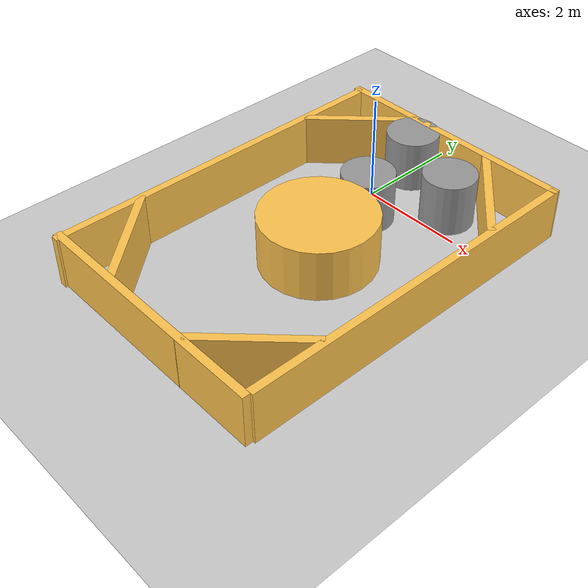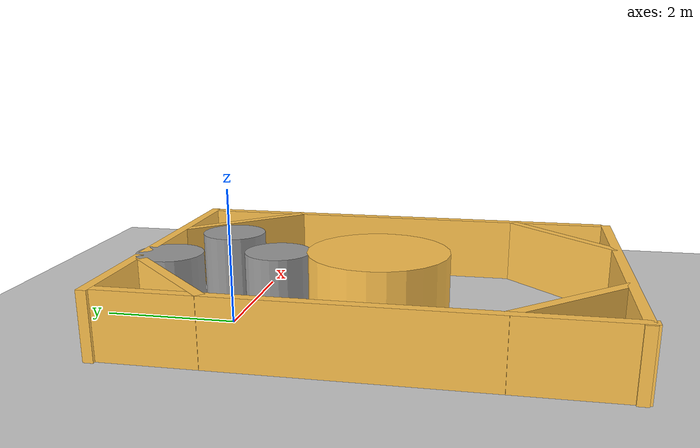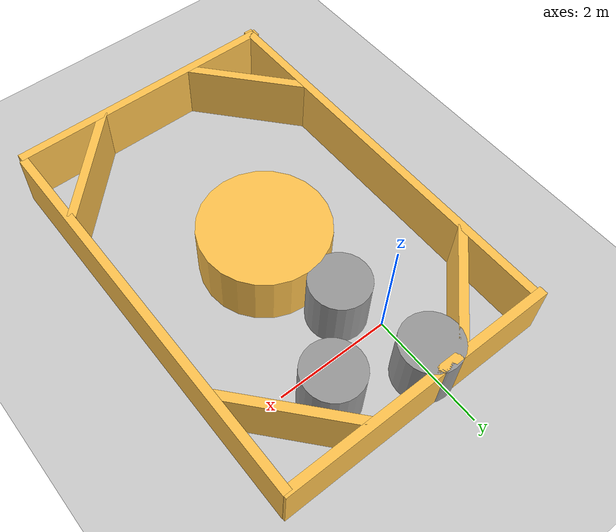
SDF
<sdf version="1.4">
 <world name="default">
  <light name="sun" type="directional">
   <pose>0 0 10 0 -0 0</pose>
   <diffuse>0.8 0.8 0.8 1</diffuse>
   <specular>0.2 0.2 0.2 1</specular>
   <attenuation>
    <range>1000</range>
    <constant>0.9</constant>
    <linear>0.01</linear>
    <quadratic>0.001</quadratic>
   </attenuation>
   <direction>-0.5 0.1 -0.9</direction>
  </light>
  <model name="ground_plane">
   <static>1</static>
   <link name="link">
    <collision name="collision">
     <geometry><plane><normal>0 0 1</normal><size>100 100</size></plane></geometry>
     <surface><friction><ode><mu>100</mu><mu2>50</mu2></ode></friction></surface>
    </collision>
    <visual name="visual">
     <cast_shadows>0</cast_shadows>
     <geometry><plane><normal>0 0 1</normal><size>100 100</size></plane></geometry>
     <material>
      <script><uri>file://media/materials/scripts/gazebo.material</uri><name>Gazebo/Grey</name></script>
     </material>
    </visual>
    <velocity_decay><linear>0</linear><angular>0</angular></velocity_decay>
   </link>
  </model>
  <model name="Round_ql_1">
   <link name="Wall_10">
    <pose>0.547294 2.925 0 0 -0 3.14159</pose>
    <inertial>
     <inertia><ixx>nan</ixx><ixy>0</ixy><ixz>0</ixz><iyy>nan</iyy><iyz>0</iyz><izz>nan</izz></inertia>
     <mass>0</mass>
    </inertial>
    <visual name="Wall_10_Visual">
     <pose>0 0 0.5 0 -0 0</pose>
     <geometry><box><size>4.88631 0.15 1</size></box></geometry>
     <material>
      <script><uri>file://media/materials/scripts/gazebo.material</uri><name>Gazebo/Grey</name></script>
      <ambient>1 0.764706 0.305882 1</ambient>
      <shader type="pixel"/>
      <diffuse>0.7 0.7 0.7 1</diffuse>
      <specular>0.01 0.01 0.01 1</specular>
      <emissive>0 0 0 1</emissive>
     </material>
    </visual>
    <collision name="Wall_10_Collision">
     <pose>0 0 0.5 0 -0 0</pose>
     <geometry><box><size>4.88631 0.15 1</size></box></geometry>
     <surface>
      <friction><ode><mu>1</mu><mu2>1</mu2><fdir1>0 0 0</fdir1><slip1>0</slip1><slip2>0</slip2></ode></friction>
      <bounce><restitution_coefficient>0</restitution_coefficient><threshold>1e+06</threshold></bounce>
      <contact>
       <collide_without_contact>0</collide_without_contact>
       <ode>
        <soft_cfm>0</soft_cfm>
        <soft_erp>0.2</soft_erp>
        <kp>1e+13</kp>
        <kd>1</kd>
        <max_vel>0.01</max_vel>
        <min_depth>0</min_depth>
       </ode>
       <bullet>
        <split_impulse>1</split_impulse>
        <split_impulse_penetration_threshold>-0.01</split_impulse_penetration_threshold>
        <soft_cfm>0</soft_cfm>
        <soft_erp>0.2</soft_erp>
        <kp>1e+13</kp>
        <kd>1</kd>
       </bullet>
      </contact>
     </surface>
    </collision>
    <velocity_decay><linear>0</linear><angular>0</angular></velocity_decay>
   </link>
   <link name="Wall_11">
    <pose>-1.7714 -0.578235 0 0 0 -1.5708</pose>
    <inertial>
     <inertia><ixx>nan</ixx><ixy>0</ixy><ixz>0</ixz><iyy>nan</iyy><iyz>0</iyz><izz>nan</izz></inertia>
     <mass>0</mass>
    </inertial>
    <visual name="Wall_11_Visual">
     <pose>0 0 0.5 0 -0 0</pose>
     <geometry><box><size>7.04488 0.15 1</size></box></geometry>
     <material>
      <script><uri>file://media/materials/scripts/gazebo.material</uri><name>Gazebo/Grey</name></script>
      <ambient>1 0.764706 0.305882 1</ambient>
      <shader type="pixel"/>
      <diffuse>0.7 0.7 0.7 1</diffuse>
      <specular>0.01 0.01 0.01 1</specular>
      <emissive>0 0 0 1</emissive>
     </material>
    </visual>
    <collision name="Wall_11_Collision">
     <pose>0 0 0.5 0 -0 0</pose>
     <geometry><box><size>7.04488 0.15 1</size></box></geometry>
     <surface>
      <friction><ode><mu>1</mu><mu2>1</mu2><fdir1>0 0 0</fdir1><slip1>0</slip1><slip2>0</slip2></ode></friction>
      <bounce><restitution_coefficient>0</restitution_coefficient><threshold>1e+06</threshold></bounce>
      <contact>
       <collide_without_contact>0</collide_without_contact>
       <collide_without_contact_bitmask>1</collide_without_contact_bitmask>
       <ode>
        <soft_cfm>0</soft_cfm>
        <soft_erp>0.2</soft_erp>
        <kp>1e+13</kp>
        <kd>1</kd>
        <max_vel>0.01</max_vel>
        <min_depth>0</min_depth>
       </ode>
       <bullet>
        <split_impulse>1</split_impulse>
        <split_impulse_penetration_threshold>-0.01</split_impulse_penetration_threshold>
        <soft_cfm>0</soft_cfm>
        <soft_erp>0.2</soft_erp>
        <kp>1e+13</kp>
        <kd>1</kd>
       </bullet>
      </contact>
     </surface>
    </collision>
    <velocity_decay><linear>0</linear><angular>0</angular></velocity_decay>
   </link>
   <link name="Wall_6">
    <pose>0.535859 -3.98664 0 0 -0 0</pose>
    <inertial>
     <inertia><ixx>nan</ixx><ixy>0</ixy><ixz>0</ixz><iyy>nan</iyy><iyz>0</iyz><izz>nan</izz></inertia>
     <mass>0</mass>
    </inertial>
    <visual name="Wall_6_Visual">
     <pose>0 0 0.5 0 -0 0</pose>
     <geometry><box><size>4.83392 0.15 1</size></box></geometry>
     <material>
      <script><uri>file://media/materials/scripts/gazebo.material</uri><name>Gazebo/Grey</name></script>
      <ambient>1 0.764706 0.305882 1</ambient>
      <shader type="pixel"/>
      <diffuse>0.7 0.7 0.7 1</diffuse>
      <specular>0.01 0.01 0.01 1</specular>
      <emissive>0 0 0 1</emissive>
     </material>
    </visual>
    <collision name="Wall_6_Collision">
     <pose>0 0 0.5 0 -0 0</pose>
     <geometry><box><size>4.83392 0.15 1</size></box></geometry>
     <surface>
      <friction><ode><mu>1</mu><mu2>1</mu2><fdir1>0 0 0</fdir1><slip1>0</slip1><slip2>0</slip2></ode></friction>
      <bounce><restitution_coefficient>0</restitution_coefficient><threshold>1e+06</threshold></bounce>
      <contact>
       <collide_without_contact>0</collide_without_contact>
       <collide_without_contact_bitmask>1</collide_without_contact_bitmask>
       <ode>
        <soft_cfm>0</soft_cfm>
        <soft_erp>0.2</soft_erp>
        <kp>1e+13</kp>
        <kd>1</kd>
        <max_vel>0.01</max_vel>
        <min_depth>0</min_depth>
       </ode>
       <bullet>
        <split_impulse>1</split_impulse>
        <split_impulse_penetration_threshold>-0.01</split_impulse_penetration_threshold>
        <soft_cfm>0</soft_cfm>
        <soft_erp>0.2</soft_erp>
        <kp>1e+13</kp>
        <kd>1</kd>
       </bullet>
      </contact>
     </surface>
    </collision>
    <velocity_decay><linear>0</linear><angular>0</angular></velocity_decay>
   </link>
   <link name="Wall_6_clone">
    <pose>-1.06662 -3.1882 0 0 0 -0.841822</pose>
    <inertial>
     <inertia><ixx>nan</ixx><ixy>0</ixy><ixz>0</ixz><iyy>nan</iyy><iyz>0</iyz><izz>nan</izz></inertia>
     <mass>0</mass>
    </inertial>
    <visual name="Wall_6_Visual">
     <pose>0 0 0.5 0 -0 0</pose>
     <geometry><box><size>2.17827 0.15 1</size></box></geometry>
     <material>
      <script><uri>file://media/materials/scripts/gazebo.material</uri><name>Gazebo/Grey</name></script>
      <ambient>1 0.764706 0.305882 1</ambient>
      <shader type="pixel"/>
      <diffuse>0.7 0.7 0.7 1</diffuse>
      <specular>0.01 0.01 0.01 1</specular>
      <emissive>0 0 0 1</emissive>
     </material>
    </visual>
    <collision name="Wall_6_Collision">
     <pose>0 0 0.5 0 -0 0</pose>
     <geometry><box><size>2.17827 0.15 1</size></box></geometry>
     <surface>
      <friction><ode><mu>1</mu><mu2>1</mu2><fdir1>0 0 0</fdir1><slip1>0</slip1><slip2>0</slip2></ode></friction>
      <bounce><restitution_coefficient>0</restitution_coefficient><threshold>1e+06</threshold></bounce>
      <contact>
       <collide_without_contact>0</collide_without_contact>
       <collide_without_contact_bitmask>1</collide_without_contact_bitmask>
       <ode>
        <soft_cfm>0</soft_cfm>
        <soft_erp>0.2</soft_erp>
        <kp>1e+13</kp>
        <kd>1</kd>
        <max_vel>0.01</max_vel>
        <min_depth>0</min_depth>
       </ode>
       <bullet>
        <split_impulse>1</split_impulse>
        <split_impulse_penetration_threshold>-0.01</split_impulse_penetration_threshold>
        <soft_cfm>0</soft_cfm>
        <soft_erp>0.2</soft_erp>
        <kp>1e+13</kp>
        <kd>1</kd>
       </bullet>
      </contact>
     </surface>
    </collision>
    <velocity_decay><linear>0</linear><angular>0</angular></velocity_decay>
   </link>
   <link name="Wall_6_clone_clone">
    <pose>2.16841 2.08689 0 0 0 -0.841822</pose>
    <inertial>
     <inertia><ixx>nan</ixx><ixy>0</ixy><ixz>0</ixz><iyy>nan</iyy><iyz>0</iyz><izz>nan</izz></inertia>
     <mass>0</mass>
    </inertial>
    <visual name="Wall_6_Visual">
     <pose>0 0 0.5 0 -0 0</pose>
     <geometry><box><size>2.17827 0.15 1</size></box></geometry>
     <material>
      <script><uri>file://media/materials/scripts/gazebo.material</uri><name>Gazebo/Grey</name></script>
      <ambient>1 0.764706 0.305882 1</ambient>
      <shader type="pixel"/>
      <diffuse>0.7 0.7 0.7 1</diffuse>
      <specular>0.01 0.01 0.01 1</specular>
      <emissive>0 0 0 1</emissive>
     </material>
    </visual>
    <collision name="Wall_6_Collision">
     <pose>0 0 0.5 0 -0 0</pose>
     <geometry><box><size>2.17827 0.15 1</size></box></geometry>
     <surface>
      <friction><ode><mu>1</mu><mu2>1</mu2><fdir1>0 0 0</fdir1><slip1>0</slip1><slip2>0</slip2></ode></friction>
      <bounce><restitution_coefficient>0</restitution_coefficient><threshold>1e+06</threshold></bounce>
      <contact>
       <collide_without_contact>0</collide_without_contact>
       <collide_without_contact_bitmask>1</collide_without_contact_bitmask>
       <ode>
        <soft_cfm>0</soft_cfm>
        <soft_erp>0.2</soft_erp>
        <kp>1e+13</kp>
        <kd>1</kd>
        <max_vel>0.01</max_vel>
        <min_depth>0</min_depth>
       </ode>
       <bullet>
        <split_impulse>1</split_impulse>
        <split_impulse_penetration_threshold>-0.01</split_impulse_penetration_threshold>
        <soft_cfm>0</soft_cfm>
        <soft_erp>0.2</soft_erp>
        <kp>1e+13</kp>
        <kd>1</kd>
       </bullet>
      </contact>
     </surface>
    </collision>
    <velocity_decay><linear>0</linear><angular>0</angular></velocity_decay>
   </link>
   <link name="Wall_6_clone_clone_0">
    <pose>-1.02986 2.14447 0 0 0 -2.34987</pose>
    <inertial>
     <inertia><ixx>nan</ixx><ixy>0</ixy><ixz>0</ixz><iyy>nan</iyy><iyz>0</iyz><izz>nan</izz></inertia>
     <mass>0</mass>
    </inertial>
    <visual name="Wall_6_Visual">
     <pose>0 0 0.5 0 -0 0</pose>
     <geometry><box><size>2.17827 0.15 1</size></box></geometry>
     <material>
      <script><uri>file://media/materials/scripts/gazebo.material</uri><name>Gazebo/Grey</name></script>
      <ambient>1 0.764706 0.305882 1</ambient>
      <shader type="pixel"/>
      <diffuse>0.7 0.7 0.7 1</diffuse>
      <specular>0.01 0.01 0.01 1</specular>
      <emissive>0 0 0 1</emissive>
     </material>
    </visual>
    <collision name="Wall_6_Collision">
     <pose>0 0 0.5 0 -0 0</pose>
     <geometry><box><size>2.17827 0.15 1</size></box></geometry>
     <surface>
      <friction><ode><mu>1</mu><mu2>1</mu2><fdir1>0 0 0</fdir1><slip1>0</slip1><slip2>0</slip2></ode></friction>
      <bounce><restitution_coefficient>0</restitution_coefficient><threshold>1e+06</threshold></bounce>
      <contact>
       <collide_without_contact>0</collide_without_contact>
       <collide_without_contact_bitmask>1</collide_without_contact_bitmask>
       <ode>
        <soft_cfm>0</soft_cfm>
        <soft_erp>0.2</soft_erp>
        <kp>1e+13</kp>
        <kd>1</kd>
        <max_vel>0.01</max_vel>
        <min_depth>0</min_depth>
       </ode>
       <bullet>
        <split_impulse>1</split_impulse>
        <split_impulse_penetration_threshold>-0.01</split_impulse_penetration_threshold>
        <soft_cfm>0</soft_cfm>
        <soft_erp>0.2</soft_erp>
        <kp>1e+13</kp>
        <kd>1</kd>
       </bullet>
      </contact>
     </surface>
    </collision>
    <velocity_decay><linear>0</linear><angular>0</angular></velocity_decay>
   </link>
   <link name="Wall_6_clone_clone_0_clone">
    <pose>2.12426 -3.23876 0 0 0 -2.34987</pose>
    <inertial>
     <inertia><ixx>nan</ixx><ixy>0</ixy><ixz>0</ixz><iyy>nan</iyy><iyz>0</iyz><izz>nan</izz></inertia>
     <mass>0</mass>
    </inertial>
    <visual name="Wall_6_Visual">
     <pose>0 0 0.5 0 -0 0</pose>
     <geometry><box><size>2.17827 0.15 1</size></box></geometry>
     <material>
      <script><uri>file://media/materials/scripts/gazebo.material</uri><name>Gazebo/Grey</name></script>
      <ambient>1 0.764706 0.305882 1</ambient>
      <shader type="pixel"/>
      <diffuse>0.7 0.7 0.7 1</diffuse>
      <specular>0.01 0.01 0.01 1</specular>
      <emissive>0 0 0 1</emissive>
     </material>
    </visual>
    <collision name="Wall_6_Collision">
     <pose>0 0 0.5 0 -0 0</pose>
     <geometry><box><size>2.17827 0.15 1</size></box></geometry>
     <surface>
      <friction><ode><mu>1</mu><mu2>1</mu2><fdir1>0 0 0</fdir1><slip1>0</slip1><slip2>0</slip2></ode></friction>
      <bounce><restitution_coefficient>0</restitution_coefficient><threshold>1e+06</threshold></bounce>
      <contact>
       <collide_without_contact>0</collide_without_contact>
       <collide_without_contact_bitmask>1</collide_without_contact_bitmask>
       <ode>
        <soft_cfm>0</soft_cfm>
        <soft_erp>0.2</soft_erp>
        <kp>1e+13</kp>
        <kd>1</kd>
        <max_vel>0.01</max_vel>
        <min_depth>0</min_depth>
       </ode>
       <bullet>
        <split_impulse>1</split_impulse>
        <split_impulse_penetration_threshold>-0.01</split_impulse_penetration_threshold>
        <soft_cfm>0</soft_cfm>
        <soft_erp>0.2</soft_erp>
        <kp>1e+13</kp>
        <kd>1</kd>
       </bullet>
      </contact>
     </surface>
    </collision>
    <velocity_decay><linear>0</linear><angular>0</angular></velocity_decay>
   </link>
   <link name="Wall_7">
    <pose>2.9235 -0.48245 0 0 -0 1.5708</pose>
    <inertial>
     <inertia><ixx>nan</ixx><ixy>0</ixy><ixz>0</ixz><iyy>nan</iyy><iyz>0</iyz><izz>nan</izz></inertia>
     <mass>0</mass>
    </inertial>
    <visual name="Wall_7_Visual">
     <pose>0 0 0.5 0 -0 0</pose>
     <geometry><box><size>6.87454 0.15 1</size></box></geometry>
     <material>
      <script><uri>file://media/materials/scripts/gazebo.material</uri><name>Gazebo/Grey</name></script>
      <ambient>1 0.764706 0.305882 1</ambient>
      <shader type="pixel"/>
      <diffuse>0.7 0.7 0.7 1</diffuse>
      <specular>0.01 0.01 0.01 1</specular>
      <emissive>0 0 0 1</emissive>
     </material>
    </visual>
    <collision name="Wall_7_Collision">
     <pose>0 0 0.5 0 -0 0</pose>
     <geometry><box><size>6.87454 0.15 1</size></box></geometry>
     <surface>
      <friction><ode><mu>1</mu><mu2>1</mu2><fdir1>0 0 0</fdir1><slip1>0</slip1><slip2>0</slip2></ode></friction>
      <bounce><restitution_coefficient>0</restitution_coefficient><threshold>1e+06</threshold></bounce>
      <contact>
       <collide_without_contact>0</collide_without_contact>
       <collide_without_contact_bitmask>1</collide_without_contact_bitmask>
       <ode>
        <soft_cfm>0</soft_cfm>
        <soft_erp>0.2</soft_erp>
        <kp>1e+13</kp>
        <kd>1</kd>
        <max_vel>0.01</max_vel>
        <min_depth>0</min_depth>
       </ode>
       <bullet>
        <split_impulse>1</split_impulse>
        <split_impulse_penetration_threshold>-0.01</split_impulse_penetration_threshold>
        <soft_cfm>0</soft_cfm>
        <soft_erp>0.2</soft_erp>
        <kp>1e+13</kp>
        <kd>1</kd>
       </bullet>
      </contact>
     </surface>
    </collision>
    <velocity_decay><linear>0</linear><angular>0</angular></velocity_decay>
   </link>
   <link name="link_0">
    <pose>0.633401 -0.492011 0.5 0 -0 0</pose>
    <inertial>
     <mass>4.60629</mass>
     <inertia><ixx>1.70998</ixx><ixy>0</ixy><ixz>0</ixz><iyy>1.70998</iyy><iyz>0</iyz><izz>2.65224</izz></inertia>
    </inertial>
    <visual name="visual">
     <geometry><cylinder><radius>1.07312</radius><length>1</length></cylinder></geometry>
     <material>
      <script><uri>file://media/materials/scripts/gazebo.material</uri><name>Gazebo/Grey</name></script>
      <ambient>1 0.764706 0.305882 1</ambient>
      <shader type="pixel"/>
      <diffuse>0.7 0.7 0.7 1</diffuse>
      <specular>0.01 0.01 0.01 1</specular>
      <emissive>0 0 0 1</emissive>
     </material>
    </visual>
    <collision name="collision">
     <geometry><cylinder><radius>1.07312</radius><length>1</length></cylinder></geometry>
     <surface>
      <friction><ode><mu>1</mu><mu2>1</mu2><fdir1>0 0 0</fdir1><slip1>0</slip1><slip2>0</slip2></ode></friction>
      <bounce><restitution_coefficient>0</restitution_coefficient><threshold>1e+06</threshold></bounce>
      <contact>
       <collide_without_contact>0</collide_without_contact>
       <collide_without_contact_bitmask>1</collide_without_contact_bitmask>
       <ode>
        <soft_cfm>0</soft_cfm>
        <soft_erp>0.2</soft_erp>
        <kp>1e+13</kp>
        <kd>1</kd>
        <max_vel>0.01</max_vel>
        <min_depth>0</min_depth>
       </ode>
       <bullet>
        <split_impulse>1</split_impulse>
        <split_impulse_penetration_threshold>-0.01</split_impulse_penetration_threshold>
        <soft_cfm>0</soft_cfm>
        <soft_erp>0.2</soft_erp>
        <kp>1e+13</kp>
        <kd>1</kd>
       </bullet>
      </contact>
     </surface>
    </collision>
    <velocity_decay><linear>0</linear><angular>0</angular></velocity_decay>
   </link>
   <static>1</static>
   <pose>0.089963 -1.56243 0 0 -0 0</pose>
  </model>
  <physics type="ode">
   <max_step_size>0.001</max_step_size>
   <real_time_factor>1</real_time_factor>
   <real_time_update_rate>1000</real_time_update_rate>
   <gravity>0 0 -9.8</gravity>
  </physics>
  <scene><ambient>0.4 0.4 0.4 1</ambient><background>0.7 0.7 0.7 1</background><shadows>1</shadows></scene>
  <spherical_coordinates>
   <surface_model>EARTH_WGS84</surface_model>
   <latitude_deg>0</latitude_deg>
   <longitude_deg>0</longitude_deg>
   <elevation>0</elevation>
   <heading_deg>0</heading_deg>
  </spherical_coordinates>
  <model name="unit_cylinder_1">
   <pose>0.442079 -0.58605 0.499993 1e-06 -1e-06 0.006639</pose>
   <link name="link">
    <inertial>
     <mass>1</mass>
     <inertia><ixx>1</ixx><ixy>0</ixy><ixz>0</ixz><iyy>1</iyy><iyz>0</iyz><izz>1</izz></inertia>
    </inertial>
    <collision name="collision">
     <geometry><cylinder><radius>0.396594</radius><length>1</length></cylinder></geometry>
    </collision>
    <visual name="visual">
     <geometry><cylinder><radius>0.5</radius><length>1</length></cylinder></geometry>
     <material>
      <script><uri>file://media/materials/scripts/gazebo.material</uri><name>Gazebo/Grey</name></script>
     </material>
    </visual>
    <velocity_decay><linear>0</linear><angular>0</angular></velocity_decay>
   </link>
   <static>0</static>
  </model>
  <model name="unit_cylinder_2">
   <pose>1.45245 0.449292 0.499995 0 -0 0</pose>
   <link name="link">
    <inertial>
     <mass>1</mass>
     <inertia><ixx>1</ixx><ixy>0</ixy><ixz>0</ixz><iyy>1</iyy><iyz>0</iyz><izz>1</izz></inertia>
    </inertial>
    <collision name="collision">
     <geometry><cylinder><radius>0.401342</radius><length>1</length></cylinder></geometry>
    </collision>
    <visual name="visual">
     <geometry><cylinder><radius>0.5</radius><length>1</length></cylinder></geometry>
     <material>
      <script><uri>file://media/materials/scripts/gazebo.material</uri><name>Gazebo/Grey</name></script>
     </material>
    </visual>
    <velocity_decay><linear>0</linear><angular>0</angular></velocity_decay>
   </link>
   <static>0</static>
  </model>
  <model name="unit_cylinder_3">
   <pose>0.081861 0.974828 0.5 0 -0 0.000373</pose>
   <link name="link">
    <inertial>
     <mass>1</mass>
     <inertia><ixx>1</ixx><ixy>0</ixy><ixz>0</ixz><iyy>1</iyy><iyz>0</iyz><izz>1</izz></inertia>
    </inertial>
    <collision name="collision">
     <geometry><cylinder><radius>0.312742</radius><length>1</length></cylinder></geometry>
    </collision>
    <visual name="visual">
     <geometry><cylinder><radius>0.5</radius><length>1</length></cylinder></geometry>
     <material>
      <script><uri>file://media/materials/scripts/gazebo.material</uri><name>Gazebo/Grey</name></script>
     </material>
    </visual>
    <velocity_decay><linear>0</linear><angular>0</angular></velocity_decay>
   </link>
   <static>0</static>
  </model>
 </world>
</sdf>
